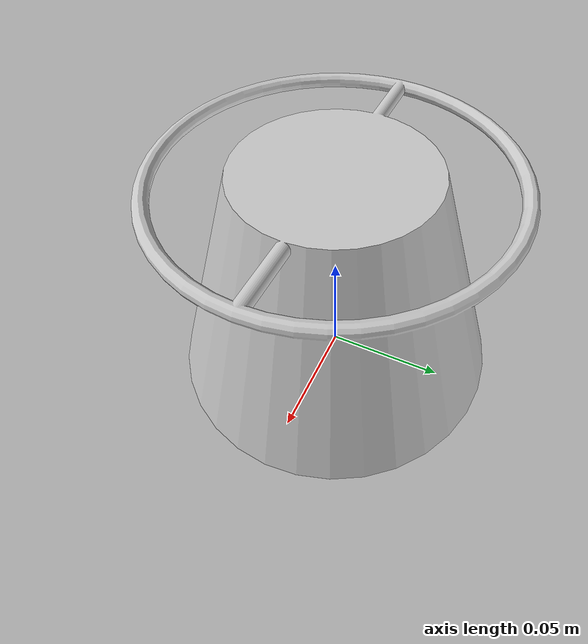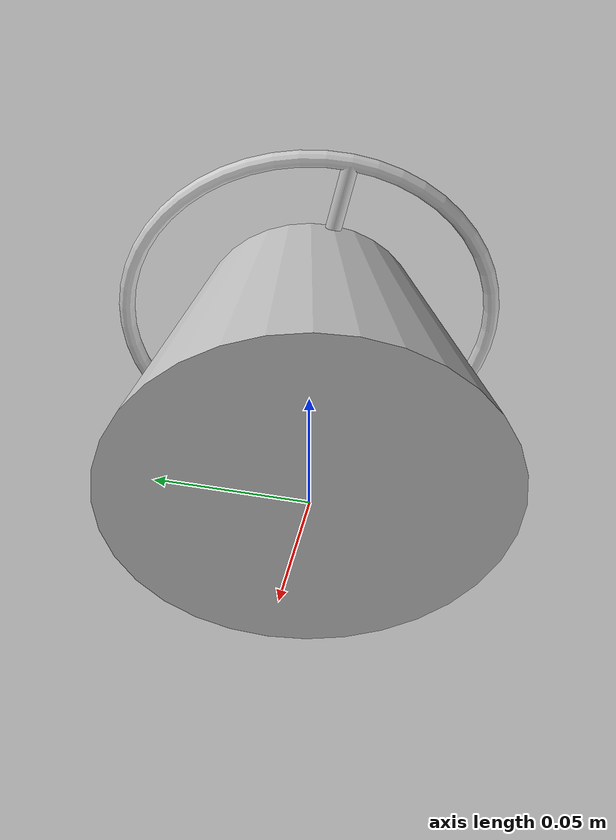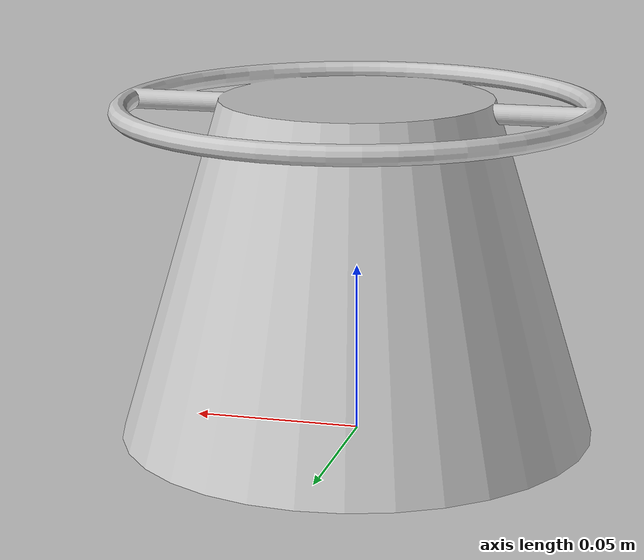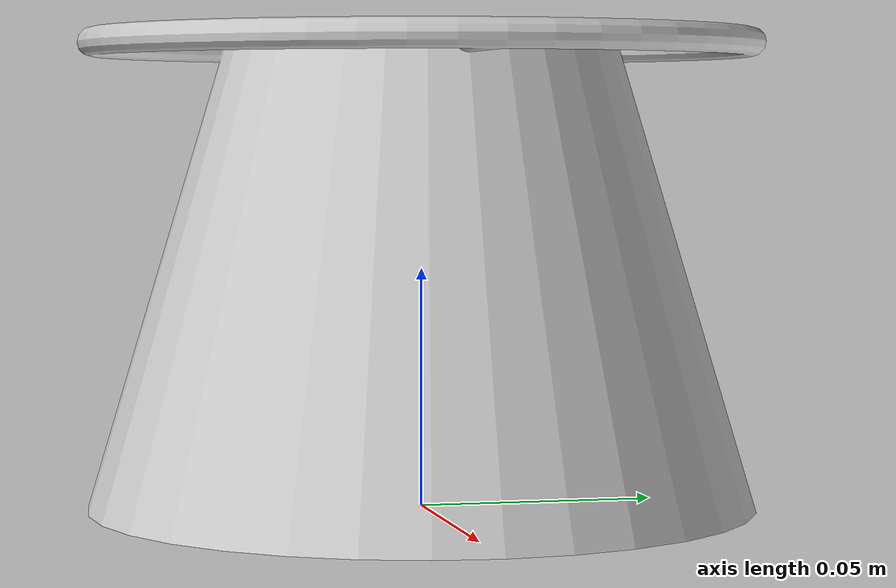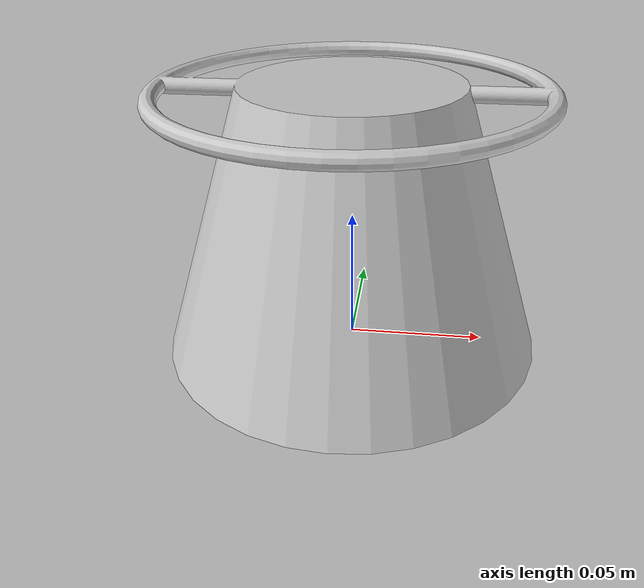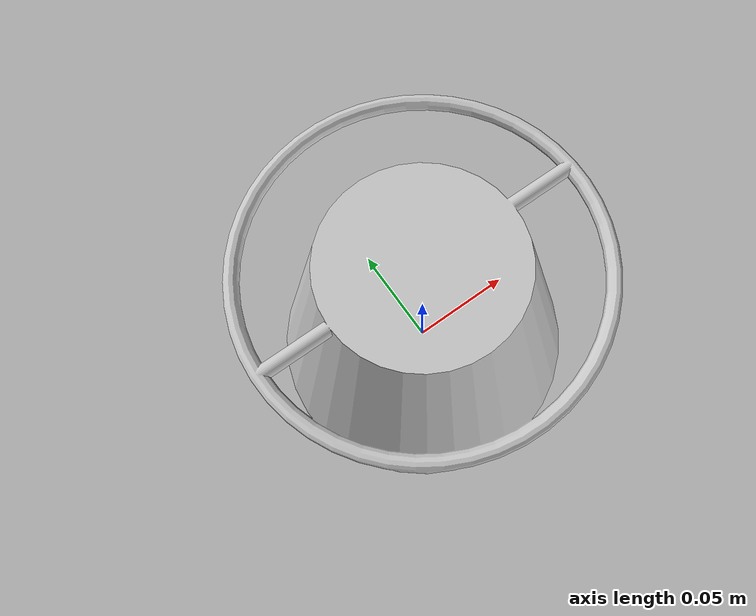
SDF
<?xml version="1.0" ?>
<sdf version="1.5">
  <model name="VTOL1">
    <pose>0 0 0  0 0 0</pose>
    <static>true</static>
    <link name="link">
      <inertial>
        <mass>0.01</mass>
        <inertia>
          <ixx>1</ixx>
          <ixy>0</ixy>
          <ixz>0</ixz>
          <iyy>1</iyy>
          <iyz>0</iyz>
          <izz>1</izz>
        </inertia>
      </inertial>

      <collision name="collision">
        <geometry>
          <mesh>
            <uri>model://vtol1/meshes/objek-vtol-2023.dae</uri>
          </mesh>
        </geometry>
      </collision>
      <visual name="visual">
        <geometry>
          <mesh>
            <uri>model://vtol1/meshes/objek-vtol-2023.dae</uri>
          </mesh>
	      </geometry>
      </visual>
    </link>
  </model>
</sdf>
